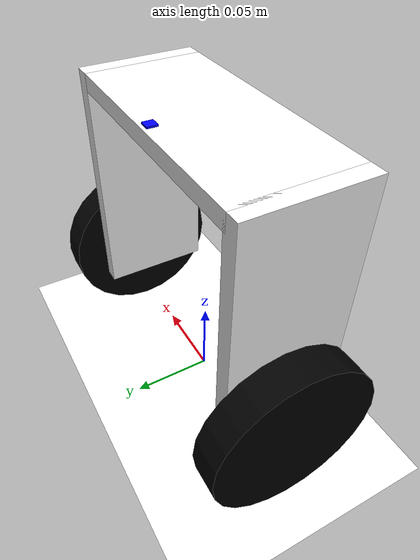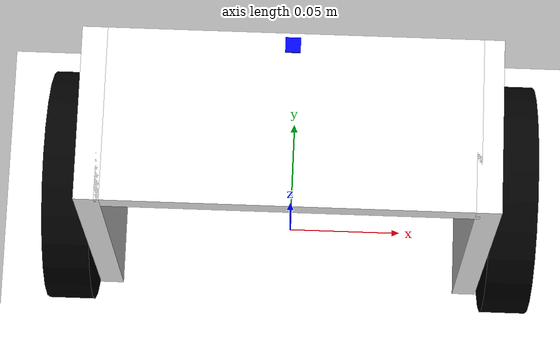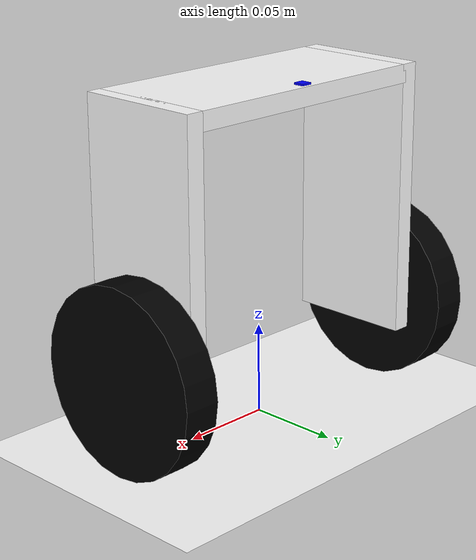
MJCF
<mujoco>
	<option gravity="0 0 -9.81" integrator="implicitfast"/>
    <default>
        <geom type="box" size="0.075 0.035 0.005" rgba="1 1 1 1"/>
    </default>

    <asset>
        <texture name="grid" type="2d" builtin="checker" rgb1=".1 .2 .3" rgb2=".2 .3 .4" width="300" height="300"/>
        <material name="grid" texture="grid" texrepeat="8 8" reflectance="0.6"/>
    </asset>

    <worldbody>
		<light diffuse=".5 .5 .5" pos="0 0 10" dir="0 0 -1"/>
        <geom name="floor" type="plane" size=".9 .9 0.01" material="grid"/>
        <body name="balance_bot" pos="0 0 0.18">
            <freejoint/>
            <geom name="top_plate" mass="0.6392"/>
            <body>
                <geom name="left_leg" euler="0 90 0" pos="0.078 0 -0.070"/>
                <body name="wheel_l">
                    <joint name="wheel_l_joint" type="hinge" axis="1 0 0" pos="0.095 0.005 -0.13"/>
                    <geom name="wheel_l" type="cylinder"  size="0.05 0.01" rgba="0 0 0 1" euler="0 90 0" pos="0.095 0.005 -0.13"/>
                </body>
            </body>
            <body>
                <geom name="right_leg" euler="0 90 0" pos="-0.078 0 -0.070"/>
                <body name="wheel_r">
                    <joint name="wheel_r_joint" type="hinge" axis="1 0 0" pos="-0.095 0.005 -0.13"/>
                    <geom name="wheel_r" type="cylinder"  size="0.05 0.01" rgba="0 0 0 1" euler="0 -90 0" pos="-0.095 0.005 -0.13"/>
                </body>
            </body>
            <site name="imu" pos="0 0.03 0.005" type="box" size="0.003 0.003 0.001" rgba="0 0 1 1"/>
        </body>
    </worldbody>

    <actuator>
        <motor joint="wheel_l_joint" ctrlrange="-1 1" ctrllimited="true"/>
        <motor joint="wheel_r_joint" ctrlrange="-1 1" ctrllimited="true"/>
    </actuator>

    <sensor>
        <gyro name="imu_gyro" site="imu"/>
        <accelerometer name="imu_accel" site="imu"/>
        <jointpos name="left_wheel_pos" joint="wheel_l_joint"/>
        <jointpos name="right_wheel_pos" joint="wheel_r_joint"/>
        <jointvel name="left_wheel_vel" joint="wheel_l_joint"/>
        <jointvel name="right_wheel_vel" joint="wheel_r_joint"/>
    </sensor>

</mujoco>
